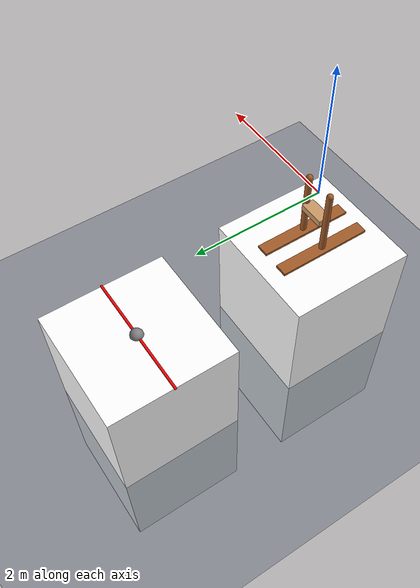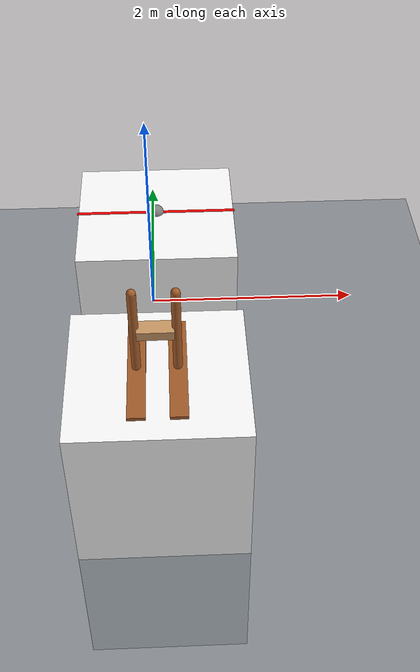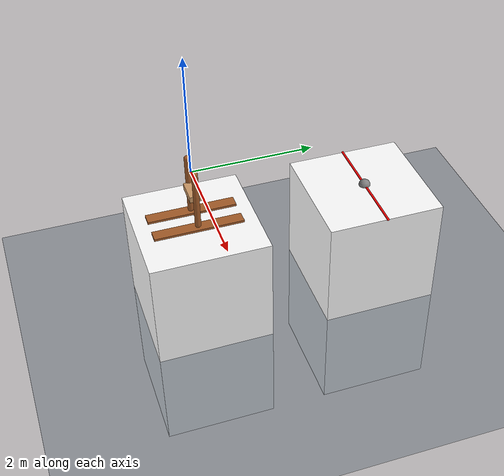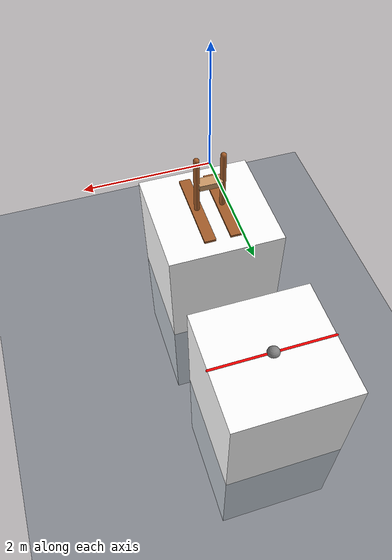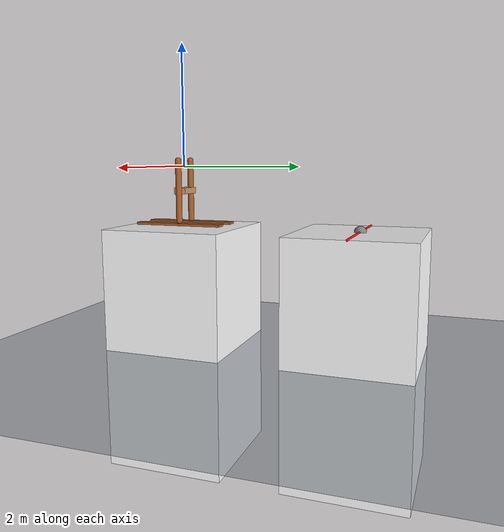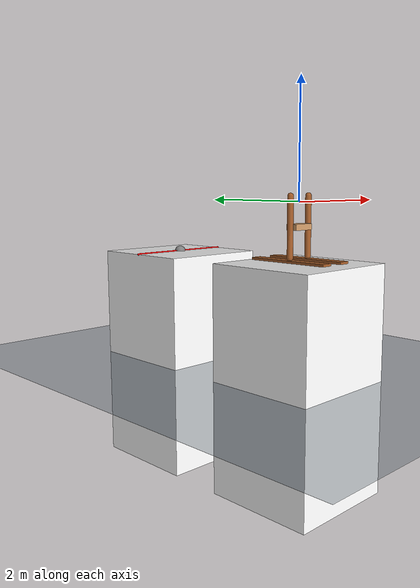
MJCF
<mujoco model="gerbil">
    <compiler inertiafromgeom="true" angle="degree"/>

    <default>
        <geom condim="4" material="matgeom"/>
    </default>

    <option timestep="0.001" iterations="50" tolerance="1e-10" solver="Newton" jacobian="dense" cone="pyramidal" gravity="0 0 -9.81"/>
    <size nconmax="50" njmax="200" nstack="10000"/>

    <visual>
        <map force="0.1" zfar="30"/>
        <rgba haze="0.15 0.25 0.35 1"/>
        <quality shadowsize="2048"/>
        <global offwidth="5000" offheight="5000"/>
    </visual>

    <asset>
        <texture type="skybox" builtin="gradient" rgb1="0.3 0.5 0.7" rgb2="0 0 0" width="512" height="512"/>
        <texture name="texplane" type="2d" builtin="checker" rgb1=".2 .3 .4" rgb2=".1 0.15 0.2" width="512" height="512" mark="cross" markrgb=".8 .8 .8"/>
        <texture name="texgeom" type="cube" builtin="flat" mark="cross" width="127" height="1278"
            rgb1="0.8 0.6 0.4" rgb2="0.8 0.6 0.4" markrgb="1 1 1" random="0.01"/>

        <material name="matplane" reflectance="0.3" texture="texplane" texrepeat="1 1" texuniform="true"/>
        <material name="matgeom" texture="texgeom" texuniform="true" rgba="0.8 0.6 .4 1"/>
    </asset>

    <worldbody>
        <light directional="true" diffuse=".8 .8 .8" specular=".2 .2 .2" pos="0 0 5" dir="0 0 -1"/>
        <geom name="floor" pos="0 0 -3" size="0 0 .25" type="plane" material="matplane" condim="3"/>

        <body name="platform_start" pos= "0 0 -3">
            <geom name="platform_start" type="box" size="1 1 2" rgba="1 1 1 1"/>
        </body>

        <body name="platform_end" pos= "0 3.0 -3" mocap="true">
            <geom name="platform_end" type="box" size="1 1 2" rgba="1 1 1 1"/>
            <geom name="highlighted_edge" type="capsule" fromto="-1 0 2 1 0 2" size="0.02" rgba="1 0 0 1" contype="0" conaffinity="0"/>
            <site name="highlighted_edge" pos="0 0 2.0" size="0.1 0.1 0.1"/>
        </body>

        <!-- Central Body  -->
        <body name="gerbil" axisangle="0 0 1 180" pos="0 0 -0.9">
            <freejoint/>
            <body name="central_body" pos="0 0 0.5">
                <camera name="cam" pos="0 0 0" quat="0 0 0.707 0.707" fovy="90"/>
                <site name="sensor_site" pos="0 0 0" size="0.01"/>
                <geom type="box" size="0.2 0.1 0.05" rgba="0.8 0.6 0.4 1" mass="10.0" contype="0" conaffinity="0"/>

                <!-- First Leg -->
                <body name="left_leg" pos="0.225 0 0.5">
                    <joint name="left_piston" type="slide" pos="0 0 -1" axis="0 0 1" range="-0.5 0"/>
                    <geom type="capsule" size="0.05 0.5" pos="0 0 -0.5" mass="0.001"/>
                    <body name="left_foot" pos="0 0 -1.05">
                        <joint name="left_ankle" type="hinge" pos="0 0 0" axis="1 0 0" range="-20 0" limited="true"/>
                        <geom type="box" size="0.1 0.75 0.02" pos= "0 0 0" mass="0.1"/>
                    </body>
                </body>

                <!-- Second Leg -->
                <body name="right_leg" pos="-0.225 0 0.5">
                    <joint name="right_piston" type="slide" pos="0 0 -1" axis="0 0 1" range="-0.5 0"/>
                    <geom type="capsule" size="0.05 0.5" pos="0 0 -0.5" mass="0.001"/>
                    <body name="right_foot" pos="0 0 -1.05">
                        <joint name="right_ankle" type="hinge" pos="0 0 0" axis="1 0 0" range="-20 0" limited="true"/>
                        <geom type="box" size="0.1 0.75 0.02" pos= "0 0 0" mass="0.1"/>
                    </body>
                </body>
            </body>
        </body>
    </worldbody>

    <!-- Motors -->
    <actuator>
        <cylinder name="left piston" joint="left_piston" timeconst="0.1"/>
        <cylinder name="right piston" joint="right_piston" timeconst="0.1"/>

        <position name="left ankle" joint="left_ankle" kp="100" kv="5"/>
        <position name="right ankle" joint="right_ankle" kp="100" kv="5"/>
    </actuator>

    <sensor>
        <accelerometer name="acceleration" site="sensor_site"/>
        <velocimeter name="velocity" site="sensor_site"/>
    </sensor>
</mujoco>
